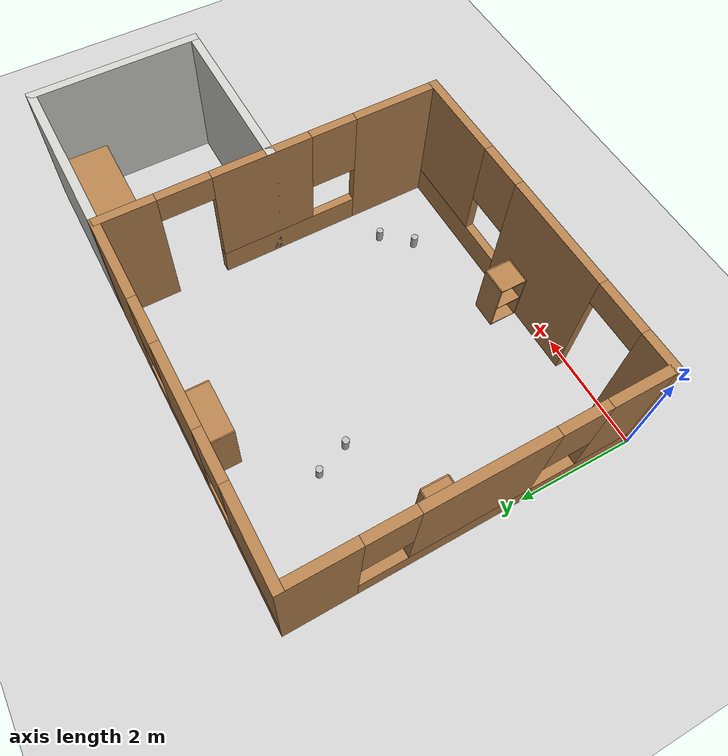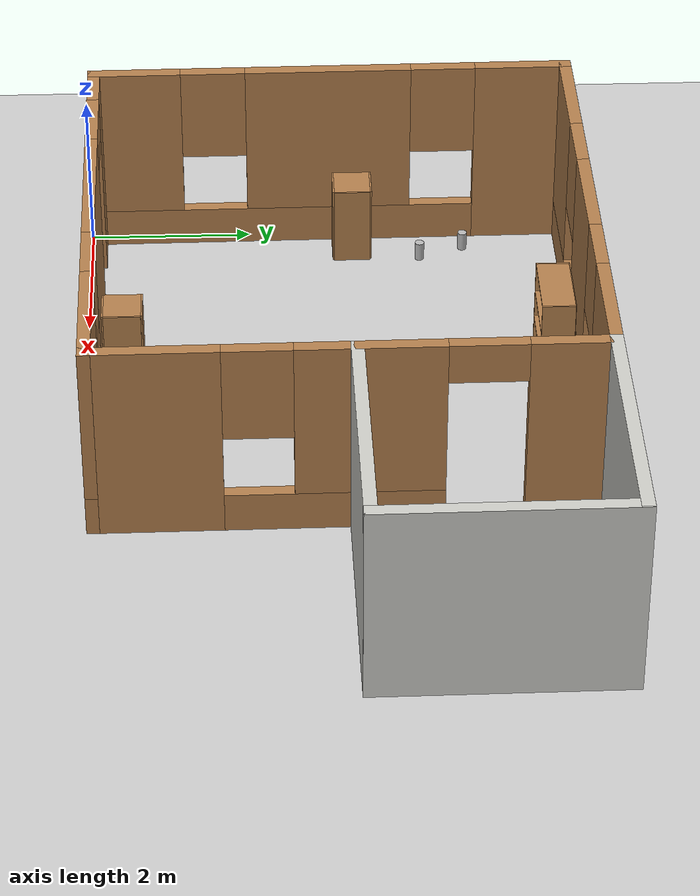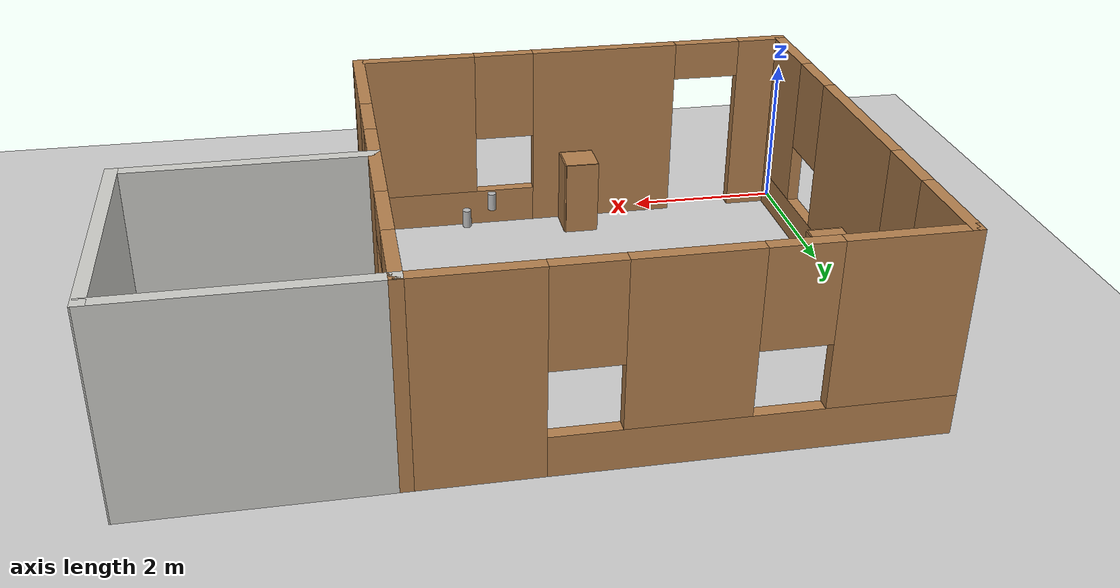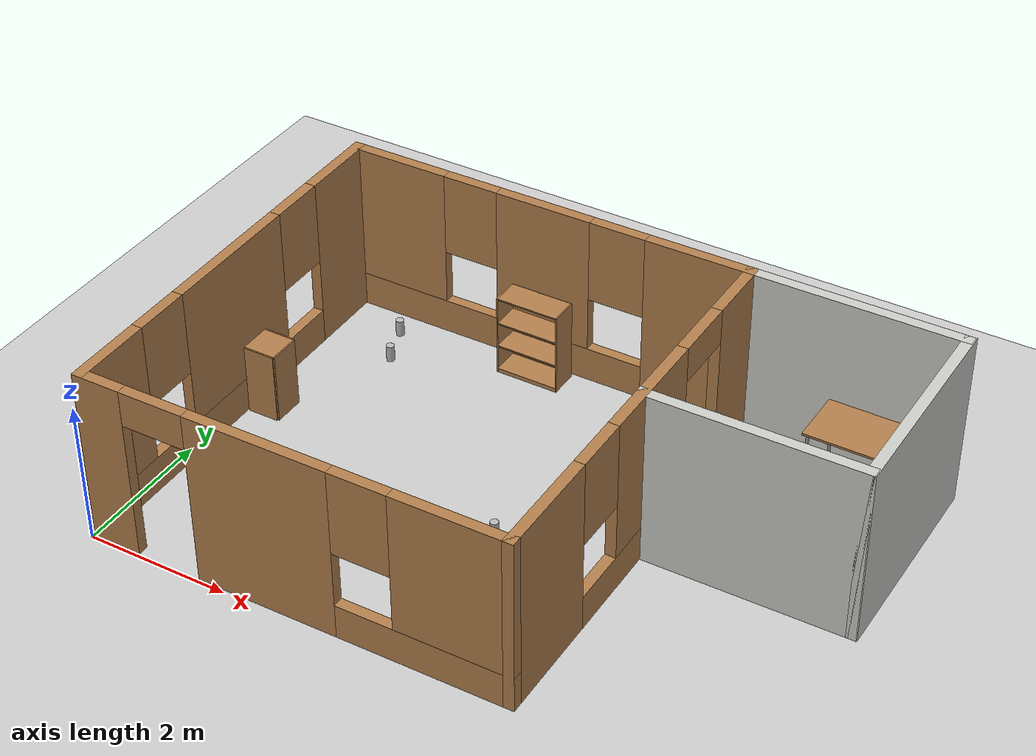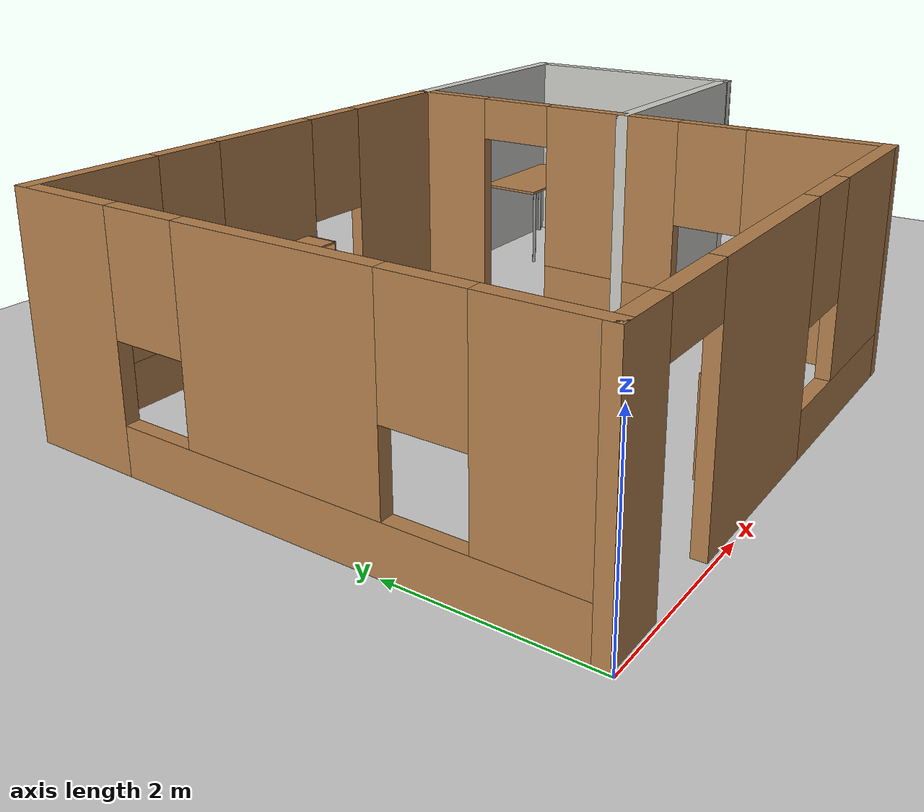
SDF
<sdf version="1.7">
 <world name="default">
  <light name="sun" type="directional">
   <pose>0 0 10 0 -0 0</pose>
   <diffuse>0.8 0.8 0.8 1</diffuse>
   <specular>0.2 0.2 0.2 1</specular>
   <attenuation>
    <range>1000</range>
    <constant>0.9</constant>
    <linear>0.01</linear>
    <quadratic>0.001</quadratic>
   </attenuation>
   <direction>-0.5 0.1 -0.9</direction>
   <spot><inner_angle>0</inner_angle><outer_angle>0</outer_angle><falloff>0</falloff></spot>
  </light>
  <model name="ground_plane">
   <static>1</static>
   <link name="link">
    <collision name="collision">
     <geometry><plane><normal>0 0 1</normal><size>100 100</size></plane></geometry>
     <surface><friction><ode><mu>100</mu><mu2>50</mu2></ode></friction></surface>
    </collision>
    <visual name="visual">
     <cast_shadows>0</cast_shadows>
     <geometry><plane><normal>0 0 1</normal><size>100 100</size></plane></geometry>
     <material>
      <script><uri>file://media/materials/scripts/gazebo.material</uri><name>Gazebo/Grey</name></script>
     </material>
    </visual>
   </link>
  </model>
  <gravity>0 0 -9.8</gravity>
  <magnetic_field>6e-06 2.3e-05 -4.2e-05</magnetic_field>
  <atmosphere type="adiabatic"/>
  <physics type="ode">
   <max_step_size>0.001</max_step_size>
   <real_time_factor>1</real_time_factor>
   <real_time_update_rate>1000</real_time_update_rate>
  </physics>
  <scene><ambient>0.4 0.4 0.4 1</ambient><background>0.7 0.7 0.7 1</background><shadows>1</shadows></scene>
  <audio><device>default</device></audio>
  <spherical_coordinates>
   <surface_model>EARTH_WGS84</surface_model>
   <latitude_deg>0</latitude_deg>
   <longitude_deg>0</longitude_deg>
   <elevation>0</elevation>
   <heading_deg>0</heading_deg>
  </spherical_coordinates>
  <model name="my_cafe2">
   <pose>4.43238 2.62372 0 0 0 -1.56403</pose>
   <link name="Wall_11">
    <collision name="Wall_11_Collision">
     <geometry><box><size>3.01332 0.15 2.5</size></box></geometry>
     <pose>0 0 1.25 0 -0 0</pose>
    </collision>
    <visual name="Wall_11_Visual">
     <pose>0 0 1.25 0 -0 0</pose>
     <geometry><box><size>3.01332 0.15 2.5</size></box></geometry>
     <material>
      <script><uri>file://media/materials/scripts/gazebo.material</uri><name>Gazebo/CeilingTiled</name></script>
      <ambient>1 1 1 1</ambient>
     </material>
     <meta><layer>0</layer></meta>
    </visual>
    <pose>-3.36682 2.9174 0 0 -0 1.5708</pose>
   </link>
   <link name="Wall_12">
    <collision name="Wall_12_Collision">
     <geometry><box><size>3 0.15 2.5</size></box></geometry>
     <pose>0 0 1.25 0 -0 0</pose>
    </collision>
    <visual name="Wall_12_Visual">
     <pose>0 0 1.25 0 -0 0</pose>
     <geometry><box><size>3 0.15 2.5</size></box></geometry>
     <material>
      <script><uri>file://media/materials/scripts/gazebo.material</uri><name>Gazebo/CeilingTiled</name></script>
      <ambient>1 1 1 1</ambient>
     </material>
     <meta><layer>0</layer></meta>
    </visual>
    <pose>-1.94182 4.36426 0 0 -0 0</pose>
   </link>
   <link name="Wall_13">
    <collision name="Wall_13_Collision">
     <geometry><box><size>3.01332 0.15 2.5</size></box></geometry>
     <pose>0 0 1.25 0 -0 0</pose>
    </collision>
    <visual name="Wall_13_Visual">
     <pose>0 0 1.25 0 -0 0</pose>
     <geometry><box><size>3.01332 0.15 2.5</size></box></geometry>
     <material>
      <script><uri>file://media/materials/scripts/gazebo.material</uri><name>Gazebo/CeilingTiled</name></script>
      <ambient>1 1 1 1</ambient>
     </material>
     <meta><layer>0</layer></meta>
    </visual>
    <pose>-0.516825 2.9174 0 0 -0 -1.5708</pose>
   </link>
   <link name="Wall_6">
    <pose>-3.36682 -1.43926 0 0 -0 -1.5708</pose>
    <visual name="Wall_6_Visual_0">
     <pose>-2.23477 0 1.25 0 -0 0</pose>
     <geometry><box><size>1.53047 0.15 2.5</size></box></geometry>
     <material>
      <script><uri>file://media/materials/scripts/gazebo.material</uri><name>Gazebo/Wood</name></script>
      <ambient>1 1 1 1</ambient>
     </material>
     <meta><layer>0</layer></meta>
    </visual>
    <collision name="Wall_6_Collision_0">
     <geometry><box><size>1.53047 0.15 2.5</size></box></geometry>
     <pose>-2.23477 0 1.25 0 -0 0</pose>
    </collision>
    <visual name="Wall_6_Visual_1">
     <pose>0.765234 0 0.25 0 -0 0</pose>
     <geometry><box><size>4.46953 0.15 0.5</size></box></geometry>
     <material>
      <script><uri>file://media/materials/scripts/gazebo.material</uri><name>Gazebo/Wood</name></script>
      <ambient>1 1 1 1</ambient>
     </material>
     <meta><layer>0</layer></meta>
    </visual>
    <collision name="Wall_6_Collision_1">
     <geometry><box><size>4.46953 0.15 0.5</size></box></geometry>
     <pose>0.765234 0 0.25 0 -0 0</pose>
    </collision>
    <visual name="Wall_6_Visual_2">
     <pose>0.025497 0 1.5 0 -0 0</pose>
     <geometry><box><size>1.39006 0.15 2</size></box></geometry>
     <material>
      <script><uri>file://media/materials/scripts/gazebo.material</uri><name>Gazebo/Wood</name></script>
      <ambient>1 1 1 1</ambient>
     </material>
     <meta><layer>0</layer></meta>
    </visual>
    <collision name="Wall_6_Collision_2">
     <geometry><box><size>1.39006 0.15 2</size></box></geometry>
     <pose>0.025497 0 1.5 0 -0 0</pose>
    </collision>
    <visual name="Wall_6_Visual_3">
     <pose>2.26026 0 1.5 0 -0 0</pose>
     <geometry><box><size>1.47947 0.15 2</size></box></geometry>
     <material>
      <script><uri>file://media/materials/scripts/gazebo.material</uri><name>Gazebo/Wood</name></script>
      <ambient>1 1 1 1</ambient>
     </material>
     <meta><layer>0</layer></meta>
    </visual>
    <collision name="Wall_6_Collision_3">
     <geometry><box><size>1.47947 0.15 2</size></box></geometry>
     <pose>2.26026 0 1.5 0 -0 0</pose>
    </collision>
    <visual name="Wall_6_Visual_4">
     <pose>-1.06953 0 1.9 0 -0 0</pose>
     <geometry><box><size>0.8 0.15 1.2</size></box></geometry>
     <material>
      <script><uri>file://media/materials/scripts/gazebo.material</uri><name>Gazebo/Wood</name></script>
      <ambient>1 1 1 1</ambient>
     </material>
     <meta><layer>0</layer></meta>
    </visual>
    <collision name="Wall_6_Collision_4">
     <geometry><box><size>0.8 0.15 1.2</size></box></geometry>
     <pose>-1.06953 0 1.9 0 -0 0</pose>
    </collision>
    <visual name="Wall_6_Visual_5">
     <pose>1.12053 0 1.9 0 -0 0</pose>
     <geometry><box><size>0.8 0.15 1.2</size></box></geometry>
     <material>
      <script><uri>file://media/materials/scripts/gazebo.material</uri><name>Gazebo/Wood</name></script>
      <ambient>1 1 1 1</ambient>
     </material>
     <meta><layer>0</layer></meta>
    </visual>
    <collision name="Wall_6_Collision_5">
     <geometry><box><size>0.8 0.15 1.2</size></box></geometry>
     <pose>1.12053 0 1.9 0 -0 0</pose>
    </collision>
   </link>
   <link name="Wall_7">
    <pose>-0.441825 -4.36426 0 0 -0 0</pose>
    <visual name="Wall_7_Visual_0">
     <pose>-2.40206 0 1.25 0 -0 0</pose>
     <geometry><box><size>1.19588 0.15 2.5</size></box></geometry>
     <material>
      <script><uri>file://media/materials/scripts/gazebo.material</uri><name>Gazebo/Wood</name></script>
      <ambient>1 1 1 1</ambient>
     </material>
     <meta><layer>0</layer></meta>
    </visual>
    <collision name="Wall_7_Collision_0">
     <geometry><box><size>1.19588 0.15 2.5</size></box></geometry>
     <pose>-2.40206 0 1.25 0 -0 0</pose>
    </collision>
    <visual name="Wall_7_Visual_1">
     <pose>0.597938 0 0.25 0 -0 0</pose>
     <geometry><box><size>4.80412 0.15 0.5</size></box></geometry>
     <material>
      <script><uri>file://media/materials/scripts/gazebo.material</uri><name>Gazebo/Wood</name></script>
      <ambient>1 1 1 1</ambient>
     </material>
     <meta><layer>0</layer></meta>
    </visual>
    <collision name="Wall_7_Collision_1">
     <geometry><box><size>4.80412 0.15 0.5</size></box></geometry>
     <pose>0.597938 0 0.25 0 -0 0</pose>
    </collision>
    <visual name="Wall_7_Visual_2">
     <pose>0.025498 0 1.5 0 -0 0</pose>
     <geometry><box><size>2.05925 0.15 2</size></box></geometry>
     <material>
      <script><uri>file://media/materials/scripts/gazebo.material</uri><name>Gazebo/Wood</name></script>
      <ambient>1 1 1 1</ambient>
     </material>
     <meta><layer>0</layer></meta>
    </visual>
    <collision name="Wall_7_Collision_2">
     <geometry><box><size>2.05925 0.15 2</size></box></geometry>
     <pose>0.025498 0 1.5 0 -0 0</pose>
    </collision>
    <visual name="Wall_7_Visual_3">
     <pose>2.42756 0 1.5 0 -0 0</pose>
     <geometry><box><size>1.14488 0.15 2</size></box></geometry>
     <material>
      <script><uri>file://media/materials/scripts/gazebo.material</uri><name>Gazebo/Wood</name></script>
      <ambient>1 1 1 1</ambient>
     </material>
     <meta><layer>0</layer></meta>
    </visual>
    <collision name="Wall_7_Collision_3">
     <geometry><box><size>1.14488 0.15 2</size></box></geometry>
     <pose>2.42756 0 1.5 0 -0 0</pose>
    </collision>
    <visual name="Wall_7_Visual_4">
     <pose>-1.40413 0 1.9 0 -0 0</pose>
     <geometry><box><size>0.8 0.15 1.2</size></box></geometry>
     <material>
      <script><uri>file://media/materials/scripts/gazebo.material</uri><name>Gazebo/Wood</name></script>
      <ambient>1 1 1 1</ambient>
     </material>
     <meta><layer>0</layer></meta>
    </visual>
    <collision name="Wall_7_Collision_4">
     <geometry><box><size>0.8 0.15 1.2</size></box></geometry>
     <pose>-1.40413 0 1.9 0 -0 0</pose>
    </collision>
    <visual name="Wall_7_Visual_5">
     <pose>1.45512 0 1.9 0 -0 0</pose>
     <geometry><box><size>0.8 0.15 1.2</size></box></geometry>
     <material>
      <script><uri>file://media/materials/scripts/gazebo.material</uri><name>Gazebo/Wood</name></script>
      <ambient>1 1 1 1</ambient>
     </material>
     <meta><layer>0</layer></meta>
    </visual>
    <collision name="Wall_7_Collision_5">
     <geometry><box><size>0.8 0.15 1.2</size></box></geometry>
     <pose>1.45512 0 1.9 0 -0 0</pose>
    </collision>
   </link>
   <link name="Wall_8">
    <pose>2.48318 -1.43926 0 0 -0 1.5708</pose>
    <visual name="Wall_8_Visual_0">
     <pose>-2.65788 0 1.25 0 -0 0</pose>
     <geometry><box><size>0.684244 0.15 2.5</size></box></geometry>
     <material>
      <script><uri>file://media/materials/scripts/gazebo.material</uri><name>Gazebo/Wood</name></script>
      <ambient>1 1 1 1</ambient>
     </material>
     <meta><layer>0</layer></meta>
    </visual>
    <collision name="Wall_8_Collision_0">
     <geometry><box><size>0.684244 0.15 2.5</size></box></geometry>
     <pose>-2.65788 0 1.25 0 -0 0</pose>
    </collision>
    <visual name="Wall_8_Visual_1">
     <pose>-0.418738 0 1.25 0 -0 0</pose>
     <geometry><box><size>1.99404 0.15 2.5</size></box></geometry>
     <material>
      <script><uri>file://media/materials/scripts/gazebo.material</uri><name>Gazebo/Wood</name></script>
      <ambient>1 1 1 1</ambient>
     </material>
     <meta><layer>0</layer></meta>
    </visual>
    <collision name="Wall_8_Collision_1">
     <geometry><box><size>1.99404 0.15 2.5</size></box></geometry>
     <pose>-0.418738 0 1.25 0 -0 0</pose>
    </collision>
    <visual name="Wall_8_Visual_2">
     <pose>1.78914 0 0.25 0 -0 0</pose>
     <geometry><box><size>2.42172 0.15 0.5</size></box></geometry>
     <material>
      <script><uri>file://media/materials/scripts/gazebo.material</uri><name>Gazebo/Wood</name></script>
      <ambient>1 1 1 1</ambient>
     </material>
     <meta><layer>0</layer></meta>
    </visual>
    <collision name="Wall_8_Collision_2">
     <geometry><box><size>2.42172 0.15 0.5</size></box></geometry>
     <pose>1.78914 0 0.25 0 -0 0</pose>
    </collision>
    <visual name="Wall_8_Visual_3">
     <pose>2.18914 0 1.5 0 -0 0</pose>
     <geometry><box><size>1.62172 0.15 2</size></box></geometry>
     <material>
      <script><uri>file://media/materials/scripts/gazebo.material</uri><name>Gazebo/Wood</name></script>
      <ambient>1 1 1 1</ambient>
     </material>
     <meta><layer>0</layer></meta>
    </visual>
    <collision name="Wall_8_Collision_3">
     <geometry><box><size>1.62172 0.15 2</size></box></geometry>
     <pose>2.18914 0 1.5 0 -0 0</pose>
    </collision>
    <visual name="Wall_8_Visual_4">
     <pose>0.97828 0 1.9 0 -0 0</pose>
     <geometry><box><size>0.8 0.15 1.2</size></box></geometry>
     <material>
      <script><uri>file://media/materials/scripts/gazebo.material</uri><name>Gazebo/Wood</name></script>
      <ambient>1 1 1 1</ambient>
     </material>
     <meta><layer>0</layer></meta>
    </visual>
    <collision name="Wall_8_Collision_4">
     <geometry><box><size>0.8 0.15 1.2</size></box></geometry>
     <pose>0.97828 0 1.9 0 -0 0</pose>
    </collision>
    <visual name="Wall_8_Visual_5">
     <pose>-1.86576 0 2.25 0 -0 0</pose>
     <geometry><box><size>0.9 0.15 0.5</size></box></geometry>
     <material>
      <script><uri>file://media/materials/scripts/gazebo.material</uri><name>Gazebo/Wood</name></script>
      <ambient>1 1 1 1</ambient>
     </material>
     <meta><layer>0</layer></meta>
    </visual>
    <collision name="Wall_8_Collision_5">
     <geometry><box><size>0.9 0.15 0.5</size></box></geometry>
     <pose>-1.86576 0 2.25 0 -0 0</pose>
    </collision>
   </link>
   <link name="Wall_9">
    <pose>-0.441825 1.48574 0 0 -0 3.14159</pose>
    <visual name="Wall_9_Visual_0">
     <pose>-2.21464 0 1.25 0 -0 0</pose>
     <geometry><box><size>1.57072 0.15 2.5</size></box></geometry>
     <material>
      <script><uri>file://media/materials/scripts/gazebo.material</uri><name>Gazebo/Wood</name></script>
      <ambient>1 1 1 1</ambient>
     </material>
     <meta><layer>0</layer></meta>
    </visual>
    <collision name="Wall_9_Collision_0">
     <geometry><box><size>1.57072 0.15 2.5</size></box></geometry>
     <pose>-2.21464 0 1.25 0 -0 0</pose>
    </collision>
    <visual name="Wall_9_Visual_1">
     <pose>2.4879 0 1.25 0 -0 0</pose>
     <geometry><box><size>1.02421 0.15 2.5</size></box></geometry>
     <material>
      <script><uri>file://media/materials/scripts/gazebo.material</uri><name>Gazebo/Wood</name></script>
      <ambient>1 1 1 1</ambient>
     </material>
     <meta><layer>0</layer></meta>
    </visual>
    <collision name="Wall_9_Collision_1">
     <geometry><box><size>1.02421 0.15 2.5</size></box></geometry>
     <pose>2.4879 0 1.25 0 -0 0</pose>
    </collision>
    <visual name="Wall_9_Visual_2">
     <pose>-0.17674 0 0.25 0 -0 0</pose>
     <geometry><box><size>2.50507 0.15 0.5</size></box></geometry>
     <material>
      <script><uri>file://media/materials/scripts/gazebo.material</uri><name>Gazebo/Wood</name></script>
      <ambient>1 1 1 1</ambient>
     </material>
     <meta><layer>0</layer></meta>
    </visual>
    <collision name="Wall_9_Collision_2">
     <geometry><box><size>2.50507 0.15 0.5</size></box></geometry>
     <pose>-0.17674 0 0.25 0 -0 0</pose>
    </collision>
    <visual name="Wall_9_Visual_3">
     <pose>0.22326 0 1.5 0 -0 0</pose>
     <geometry><box><size>1.70507 0.15 2</size></box></geometry>
     <material>
      <script><uri>file://media/materials/scripts/gazebo.material</uri><name>Gazebo/Wood</name></script>
      <ambient>1 1 1 1</ambient>
     </material>
     <meta><layer>0</layer></meta>
    </visual>
    <collision name="Wall_9_Collision_3">
     <geometry><box><size>1.70507 0.15 2</size></box></geometry>
     <pose>0.22326 0 1.5 0 -0 0</pose>
    </collision>
    <visual name="Wall_9_Visual_4">
     <pose>-1.02927 0 1.9 0 -0 0</pose>
     <geometry><box><size>0.8 0.15 1.2</size></box></geometry>
     <material>
      <script><uri>file://media/materials/scripts/gazebo.material</uri><name>Gazebo/Wood</name></script>
      <ambient>1 1 1 1</ambient>
     </material>
     <meta><layer>0</layer></meta>
    </visual>
    <collision name="Wall_9_Collision_4">
     <geometry><box><size>0.8 0.15 1.2</size></box></geometry>
     <pose>-1.02927 0 1.9 0 -0 0</pose>
    </collision>
    <visual name="Wall_9_Visual_5">
     <pose>1.5258 0 2.25 0 -0 0</pose>
     <geometry><box><size>0.9 0.15 0.5</size></box></geometry>
     <material>
      <script><uri>file://media/materials/scripts/gazebo.material</uri><name>Gazebo/Wood</name></script>
      <ambient>1 1 1 1</ambient>
     </material>
     <meta><layer>0</layer></meta>
    </visual>
    <collision name="Wall_9_Collision_5">
     <geometry><box><size>0.9 0.15 0.5</size></box></geometry>
     <pose>1.5258 0 2.25 0 -0 0</pose>
    </collision>
   </link>
   <static>1</static>
  </model>
  <model name="table">
   <static>1</static>
   <link name="link">
    <collision name="surface">
     <pose>0 0 1 0 -0 0</pose>
     <geometry><box><size>1.5 0.8 0.03</size></box></geometry>
     <surface><friction><ode><mu>0.6</mu><mu2>0.6</mu2></ode></friction></surface>
    </collision>
    <visual name="visual1">
     <pose>0 0 1 0 -0 0</pose>
     <geometry><box><size>1.5 0.8 0.03</size></box></geometry>
     <material>
      <script><uri>file://media/materials/scripts/gazebo.material</uri><name>Gazebo/Wood</name></script>
     </material>
    </visual>
    <collision name="front_left_leg_collision">
     <pose>0.68 0.38 0.5 0 -0 0</pose>
     <geometry><cylinder><radius>0.02</radius><length>1</length></cylinder></geometry>
    </collision>
    <visual name="front_left_leg">
     <pose>0.68 0.38 0.5 0 -0 0</pose>
     <geometry><cylinder><radius>0.02</radius><length>1</length></cylinder></geometry>
     <material>
      <script><uri>file://media/materials/scripts/gazebo.material</uri><name>Gazebo/Grey</name></script>
     </material>
    </visual>
    <collision name="front_right_leg_collision">
     <pose>0.68 -0.38 0.5 0 -0 0</pose>
     <geometry><cylinder><radius>0.02</radius><length>1</length></cylinder></geometry>
    </collision>
    <visual name="front_right_leg">
     <pose>0.68 -0.38 0.5 0 -0 0</pose>
     <geometry><cylinder><radius>0.02</radius><length>1</length></cylinder></geometry>
     <material>
      <script><uri>file://media/materials/scripts/gazebo.material</uri><name>Gazebo/Grey</name></script>
     </material>
    </visual>
    <collision name="back_right_leg_collision">
     <pose>-0.68 -0.38 0.5 0 -0 0</pose>
     <geometry><cylinder><radius>0.02</radius><length>1</length></cylinder></geometry>
    </collision>
    <visual name="back_right_leg">
     <pose>-0.68 -0.38 0.5 0 -0 0</pose>
     <geometry><cylinder><radius>0.02</radius><length>1</length></cylinder></geometry>
     <material>
      <script><uri>file://media/materials/scripts/gazebo.material</uri><name>Gazebo/Grey</name></script>
     </material>
    </visual>
    <collision name="back_left_leg_collision">
     <pose>-0.68 0.38 0.5 0 -0 0</pose>
     <geometry><cylinder><radius>0.02</radius><length>1</length></cylinder></geometry>
    </collision>
    <visual name="back_left_leg">
     <pose>-0.68 0.38 0.5 0 -0 0</pose>
     <geometry><cylinder><radius>0.02</radius><length>1</length></cylinder></geometry>
     <material>
      <script><uri>file://media/materials/scripts/gazebo.material</uri><name>Gazebo/Grey</name></script>
     </material>
    </visual>
   </link>
   <pose>7.86462 5.52949 0 0 -0 0</pose>
  </model>
  <model name="cabinet">
   <static>1</static>
   <link name="cabinet_bottom_plate">
    <inertial>
     <pose>0 0 -1 0 -0 0</pose>
     <inertia><ixx>2.05</ixx><ixy>0</ixy><ixz>0</ixz><iyy>2.05</iyy><iyz>0</iyz><izz>2.05</izz></inertia>
     <mass>25</mass>
    </inertial>
    <collision name="cabinet_bottom_plate_geom">
     <pose>0 0 0.01 0 -0 0</pose>
     <geometry><box><size>0.45 0.45 0.02</size></box></geometry>
    </collision>
    <visual name="cabinet_bottom_plate_geom_visual">
     <pose>0 0 0.01 0 -0 0</pose>
     <geometry><box><size>0.45 0.45 0.02</size></box></geometry>
     <material>
      <script><uri>file://media/materials/scripts/gazebo.material</uri><name>Gazebo/Wood</name></script>
     </material>
    </visual>
    <collision name="cabinet_bottom_plate_geom_cabinet_back_plate">
     <pose>0.235 0 0.51 0 -0 0</pose>
     <geometry><box><size>0.02 0.45 1.02</size></box></geometry>
    </collision>
    <visual name="cabinet_bottom_plate_geom_cabinet_back_plate_visual">
     <pose>0.235 0 0.51 0 -0 0</pose>
     <geometry><box><size>0.02 0.45 1.02</size></box></geometry>
     <material>
      <script><uri>file://media/materials/scripts/gazebo.material</uri><name>Gazebo/Wood</name></script>
     </material>
    </visual>
    <collision name="cabinet_bottom_plate_geom_cabinet_left_plate">
     <pose>0 0.235 0.51 0 -0 0</pose>
     <geometry><box><size>0.45 0.02 1.02</size></box></geometry>
    </collision>
    <visual name="cabinet_bottom_plate_geom_cabinet_left_plate_visual">
     <pose>0 0.235 0.51 0 -0 0</pose>
     <geometry><box><size>0.45 0.02 1.02</size></box></geometry>
     <material>
      <script><uri>file://media/materials/scripts/gazebo.material</uri><name>Gazebo/Wood</name></script>
     </material>
    </visual>
    <collision name="cabinet_bottom_plate_geom_cabinet_middle_plate">
     <pose>0 0 0.51 0 -0 0</pose>
     <geometry><box><size>0.45 0.45 0.02</size></box></geometry>
    </collision>
    <visual name="cabinet_bottom_plate_geom_cabinet_middle_plate_visual">
     <pose>0 0 0.51 0 -0 0</pose>
     <geometry><box><size>0.45 0.45 0.02</size></box></geometry>
     <material>
      <script><uri>file://media/materials/scripts/gazebo.material</uri><name>Gazebo/Wood</name></script>
     </material>
    </visual>
    <collision name="cabinet_bottom_plate_geom_cabinet_right_plate">
     <pose>0 -0.235 0.51 0 -0 0</pose>
     <geometry><box><size>0.45 0.02 1.02</size></box></geometry>
    </collision>
    <visual name="cabinet_bottom_plate_geom_cabinet_right_plate_visual">
     <pose>0 -0.235 0.51 0 -0 0</pose>
     <geometry><box><size>0.45 0.02 1.02</size></box></geometry>
     <material>
      <script><uri>file://media/materials/scripts/gazebo.material</uri><name>Gazebo/Wood</name></script>
     </material>
    </visual>
    <collision name="cabinet_bottom_plate_geom_cabinet_top_plate">
     <pose>0 0 1.01 0 -0 0</pose>
     <geometry><box><size>0.45 0.45 0.02</size></box></geometry>
    </collision>
    <visual name="cabinet_bottom_plate_geom_cabinet_top_plate_visual">
     <pose>0 0 1.01 0 -0 0</pose>
     <geometry><box><size>0.45 0.45 0.02</size></box></geometry>
     <material>
      <script><uri>file://media/materials/scripts/gazebo.material</uri><name>Gazebo/Wood</name></script>
     </material>
    </visual>
   </link>
   <pose>0.378995 3.2969 0 0 -0 0</pose>
  </model>
  <model name="cabinet_0">
   <static>1</static>
   <link name="cabinet_bottom_plate">
    <inertial>
     <pose>0 0 -1 0 -0 0</pose>
     <inertia><ixx>2.05</ixx><ixy>0</ixy><ixz>0</ixz><iyy>2.05</iyy><iyz>0</iyz><izz>2.05</izz></inertia>
     <mass>25</mass>
    </inertial>
    <collision name="cabinet_bottom_plate_geom">
     <pose>0 0 0.01 0 -0 0</pose>
     <geometry><box><size>0.45 0.45 0.02</size></box></geometry>
    </collision>
    <visual name="cabinet_bottom_plate_geom_visual">
     <pose>0 0 0.01 0 -0 0</pose>
     <geometry><box><size>0.45 0.45 0.02</size></box></geometry>
     <material>
      <script><uri>file://media/materials/scripts/gazebo.material</uri><name>Gazebo/Wood</name></script>
     </material>
    </visual>
    <collision name="cabinet_bottom_plate_geom_cabinet_back_plate">
     <pose>0.235 0 0.51 0 -0 0</pose>
     <geometry><box><size>0.02 0.45 1.02</size></box></geometry>
    </collision>
    <visual name="cabinet_bottom_plate_geom_cabinet_back_plate_visual">
     <pose>0.235 0 0.51 0 -0 0</pose>
     <geometry><box><size>0.02 0.45 1.02</size></box></geometry>
     <material>
      <script><uri>file://media/materials/scripts/gazebo.material</uri><name>Gazebo/Wood</name></script>
     </material>
    </visual>
    <collision name="cabinet_bottom_plate_geom_cabinet_left_plate">
     <pose>0 0.235 0.51 0 -0 0</pose>
     <geometry><box><size>0.45 0.02 1.02</size></box></geometry>
    </collision>
    <visual name="cabinet_bottom_plate_geom_cabinet_left_plate_visual">
     <pose>0 0.235 0.51 0 -0 0</pose>
     <geometry><box><size>0.45 0.02 1.02</size></box></geometry>
     <material>
      <script><uri>file://media/materials/scripts/gazebo.material</uri><name>Gazebo/Wood</name></script>
     </material>
    </visual>
    <collision name="cabinet_bottom_plate_geom_cabinet_middle_plate">
     <pose>0 0 0.51 0 -0 0</pose>
     <geometry><box><size>0.45 0.45 0.02</size></box></geometry>
    </collision>
    <visual name="cabinet_bottom_plate_geom_cabinet_middle_plate_visual">
     <pose>0 0 0.51 0 -0 0</pose>
     <geometry><box><size>0.45 0.45 0.02</size></box></geometry>
     <material>
      <script><uri>file://media/materials/scripts/gazebo.material</uri><name>Gazebo/Wood</name></script>
     </material>
    </visual>
    <collision name="cabinet_bottom_plate_geom_cabinet_right_plate">
     <pose>0 -0.235 0.51 0 -0 0</pose>
     <geometry><box><size>0.45 0.02 1.02</size></box></geometry>
    </collision>
    <visual name="cabinet_bottom_plate_geom_cabinet_right_plate_visual">
     <pose>0 -0.235 0.51 0 -0 0</pose>
     <geometry><box><size>0.45 0.02 1.02</size></box></geometry>
     <material>
      <script><uri>file://media/materials/scripts/gazebo.material</uri><name>Gazebo/Wood</name></script>
     </material>
    </visual>
    <collision name="cabinet_bottom_plate_geom_cabinet_top_plate">
     <pose>0 0 1.01 0 -0 0</pose>
     <geometry><box><size>0.45 0.45 0.02</size></box></geometry>
    </collision>
    <visual name="cabinet_bottom_plate_geom_cabinet_top_plate_visual">
     <pose>0 0 1.01 0 -0 0</pose>
     <geometry><box><size>0.45 0.45 0.02</size></box></geometry>
     <material>
      <script><uri>file://media/materials/scripts/gazebo.material</uri><name>Gazebo/Wood</name></script>
     </material>
    </visual>
   </link>
   <pose>2.97372 0.45728 0 0 -0 0</pose>
  </model>
  <model name="beer">
   <link name="link">
    <pose>0 0 0.115 0 -0 0</pose>
    <inertial>
     <mass>0.39</mass>
     <inertia><ixx>0.00058</ixx><ixy>0</ixy><ixz>0</ixz><iyy>0.00058</iyy><iyz>0</iyz><izz>0.00019</izz></inertia>
    </inertial>
    <collision name="collision">
     <geometry><cylinder><radius>0.055</radius><length>0.23</length></cylinder></geometry>
    </collision>
    <visual name="visual">
     <geometry><cylinder><radius>0.055</radius><length>0.23</length></cylinder></geometry>
     <material>
      <script>
       <uri>model://beer/materials/scripts</uri>
       <uri>model://beer/materials/textures</uri>
       <name>Beer/Diffuse</name>
      </script>
     </material>
    </visual>
   </link>
   <pose>4.33266 1.34099 0.775 -5e-06 -1e-06 0.002591</pose>
  </model>
  <model name="beer_0">
   <link name="link">
    <pose>0 0 0.115 0 -0 0</pose>
    <inertial>
     <mass>0.39</mass>
     <inertia><ixx>0.00058</ixx><ixy>0</ixy><ixz>0</ixz><iyy>0.00058</iyy><iyz>0</iyz><izz>0.00019</izz></inertia>
    </inertial>
    <collision name="collision">
     <geometry><cylinder><radius>0.055</radius><length>0.23</length></cylinder></geometry>
    </collision>
    <visual name="visual">
     <geometry><cylinder><radius>0.055</radius><length>0.23</length></cylinder></geometry>
     <material>
      <script>
       <uri>model://beer/materials/scripts</uri>
       <uri>model://beer/materials/textures</uri>
       <name>Beer/Diffuse</name>
      </script>
     </material>
    </visual>
   </link>
   <pose>4.71955 1.7783 0.77499 0 -0 0.009152</pose>
  </model>
  <model name="beer_1">
   <link name="link">
    <pose>0 0 0.115 0 -0 0</pose>
    <inertial>
     <mass>0.39</mass>
     <inertia><ixx>0.00058</ixx><ixy>0</ixy><ixz>0</ixz><iyy>0.00058</iyy><iyz>0</iyz><izz>0.00019</izz></inertia>
    </inertial>
    <collision name="collision">
     <geometry><cylinder><radius>0.055</radius><length>0.23</length></cylinder></geometry>
    </collision>
    <visual name="visual">
     <geometry><cylinder><radius>0.055</radius><length>0.23</length></cylinder></geometry>
     <material>
      <script>
       <uri>model://beer/materials/scripts</uri>
       <uri>model://beer/materials/textures</uri>
       <name>Beer/Diffuse</name>
      </script>
     </material>
    </visual>
   </link>
   <pose>1.53829 4.61558 0.775002 3.4e-05 4e-06 0.005559</pose>
  </model>
  <model name="beer_2">
   <link name="link">
    <pose>0 0 0.115 0 -0 0</pose>
    <inertial>
     <mass>0.39</mass>
     <inertia><ixx>0.00058</ixx><ixy>0</ixy><ixz>0</ixz><iyy>0.00058</iyy><iyz>0</iyz><izz>0.00019</izz></inertia>
    </inertial>
    <collision name="collision">
     <geometry><cylinder><radius>0.055</radius><length>0.23</length></cylinder></geometry>
    </collision>
    <visual name="visual">
     <geometry><cylinder><radius>0.055</radius><length>0.23</length></cylinder></geometry>
     <material>
      <script>
       <uri>model://beer/materials/scripts</uri>
       <uri>model://beer/materials/textures</uri>
       <name>Beer/Diffuse</name>
      </script>
     </material>
    </visual>
   </link>
   <pose>1.73976 4.07979 0.775002 1.1e-05 3.9e-05 0.001021</pose>
  </model>
  <model name="bookshelf">
   <static>1</static>
   <link name="link">
    <inertial><mass>1</mass></inertial>
    <collision name="back">
     <pose>0 0.005 0.6 0 -0 0</pose>
     <geometry><box><size>0.9 0.01 1.2</size></box></geometry>
    </collision>
    <visual name="visual1">
     <pose>0 0.005 0.6 0 -0 0</pose>
     <geometry><box><size>0.9 0.01 1.2</size></box></geometry>
     <material>
      <script><uri>file://media/materials/scripts/gazebo.material</uri><name>Gazebo/Wood</name></script>
     </material>
    </visual>
    <collision name="left_side">
     <pose>0.45 -0.195 0.6 0 -0 0</pose>
     <geometry><box><size>0.02 0.4 1.2</size></box></geometry>
    </collision>
    <visual name="visual2">
     <pose>0.45 -0.195 0.6 0 -0 0</pose>
     <geometry><box><size>0.02 0.4 1.2</size></box></geometry>
     <material>
      <script><uri>file://media/materials/scripts/gazebo.material</uri><name>Gazebo/Wood</name></script>
     </material>
    </visual>
    <collision name="right_side">
     <pose>-0.45 -0.195 0.6 0 -0 0</pose>
     <geometry><box><size>0.02 0.4 1.2</size></box></geometry>
    </collision>
    <visual name="visual3">
     <pose>-0.45 -0.195 0.6 0 -0 0</pose>
     <geometry><box><size>0.02 0.4 1.2</size></box></geometry>
     <material>
      <script><uri>file://media/materials/scripts/gazebo.material</uri><name>Gazebo/Wood</name></script>
     </material>
    </visual>
    <collision name="bottom">
     <pose>0 -0.195 0.03 0 -0 0</pose>
     <geometry><box><size>0.88 0.4 0.06</size></box></geometry>
    </collision>
    <visual name="visual4">
     <pose>0 -0.195 0.03 0 -0 0</pose>
     <geometry><box><size>0.88 0.4 0.06</size></box></geometry>
     <material>
      <script><uri>file://media/materials/scripts/gazebo.material</uri><name>Gazebo/Wood</name></script>
     </material>
    </visual>
    <collision name="top">
     <pose>0 -0.195 1.19 0 -0 0</pose>
     <geometry><box><size>0.88 0.4 0.02</size></box></geometry>
    </collision>
    <visual name="visual5">
     <pose>0 -0.195 1.19 0 -0 0</pose>
     <geometry><box><size>0.88 0.4 0.02</size></box></geometry>
     <material>
      <script><uri>file://media/materials/scripts/gazebo.material</uri><name>Gazebo/Wood</name></script>
     </material>
    </visual>
    <collision name="low_shelf">
     <pose>0 -0.195 0.43 0 -0 0</pose>
     <geometry><box><size>0.88 0.4 0.02</size></box></geometry>
    </collision>
    <visual name="visual6">
     <pose>0 -0.195 0.43 0 -0 0</pose>
     <geometry><box><size>0.88 0.4 0.02</size></box></geometry>
     <material>
      <script><uri>file://media/materials/scripts/gazebo.material</uri><name>Gazebo/Wood</name></script>
     </material>
    </visual>
    <collision name="high_shelf">
     <pose>0 -0.195 0.8 0 -0 0</pose>
     <geometry><box><size>0.88 0.4 0.02</size></box></geometry>
    </collision>
    <visual name="visual7">
     <pose>0 -0.195 0.8 0 -0 0</pose>
     <geometry><box><size>0.88 0.4 0.02</size></box></geometry>
     <material>
      <script><uri>file://media/materials/scripts/gazebo.material</uri><name>Gazebo/Wood</name></script>
     </material>
    </visual>
   </link>
   <pose>2.98235 5.83506 0 0 -0 0</pose>
  </model>
 </world>
</sdf>
